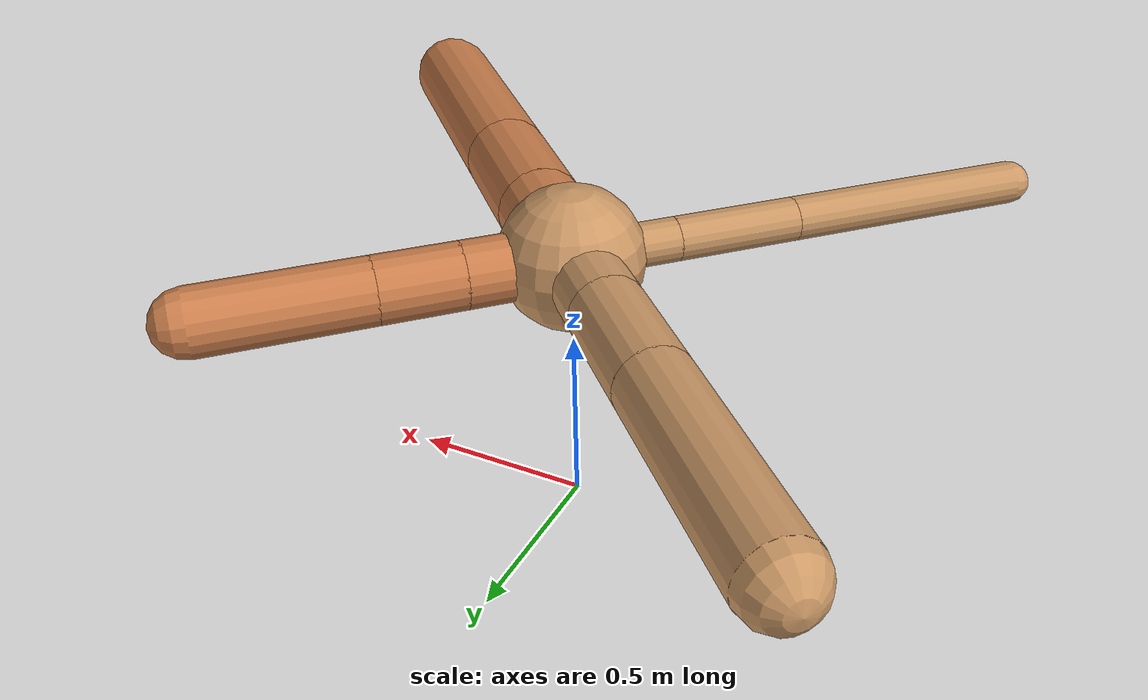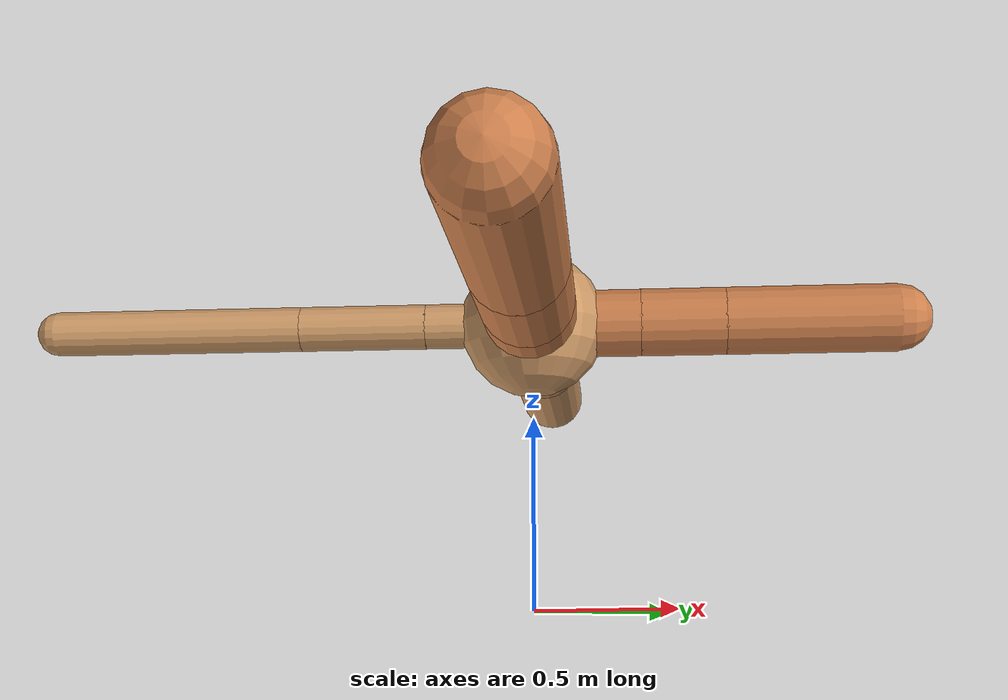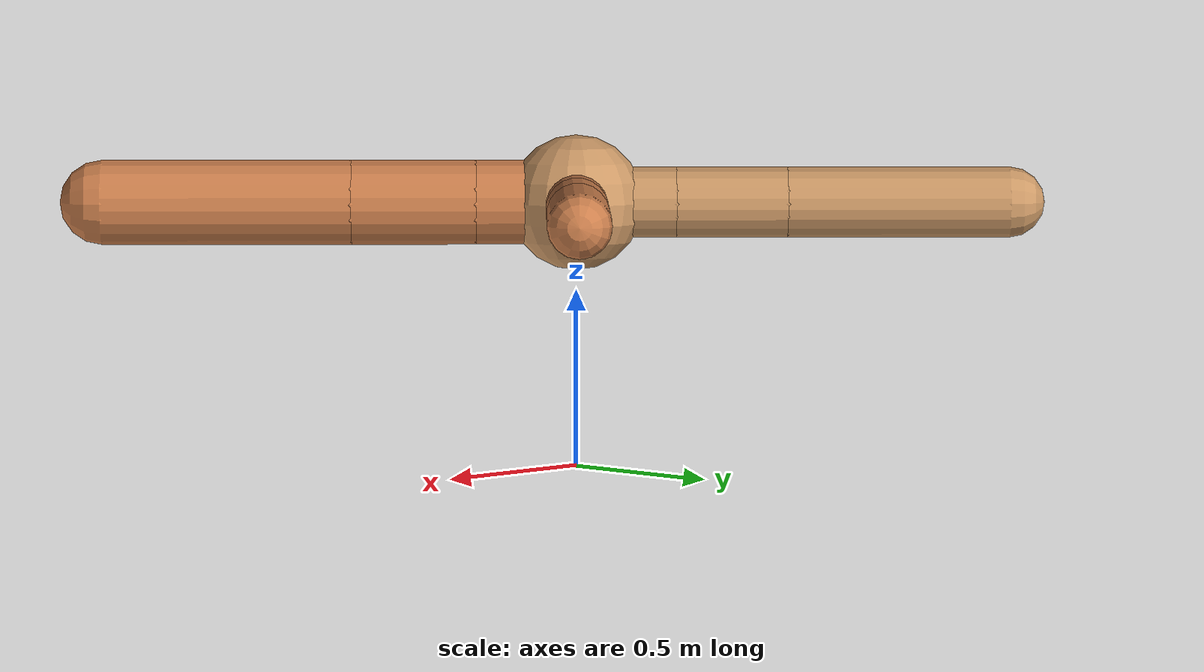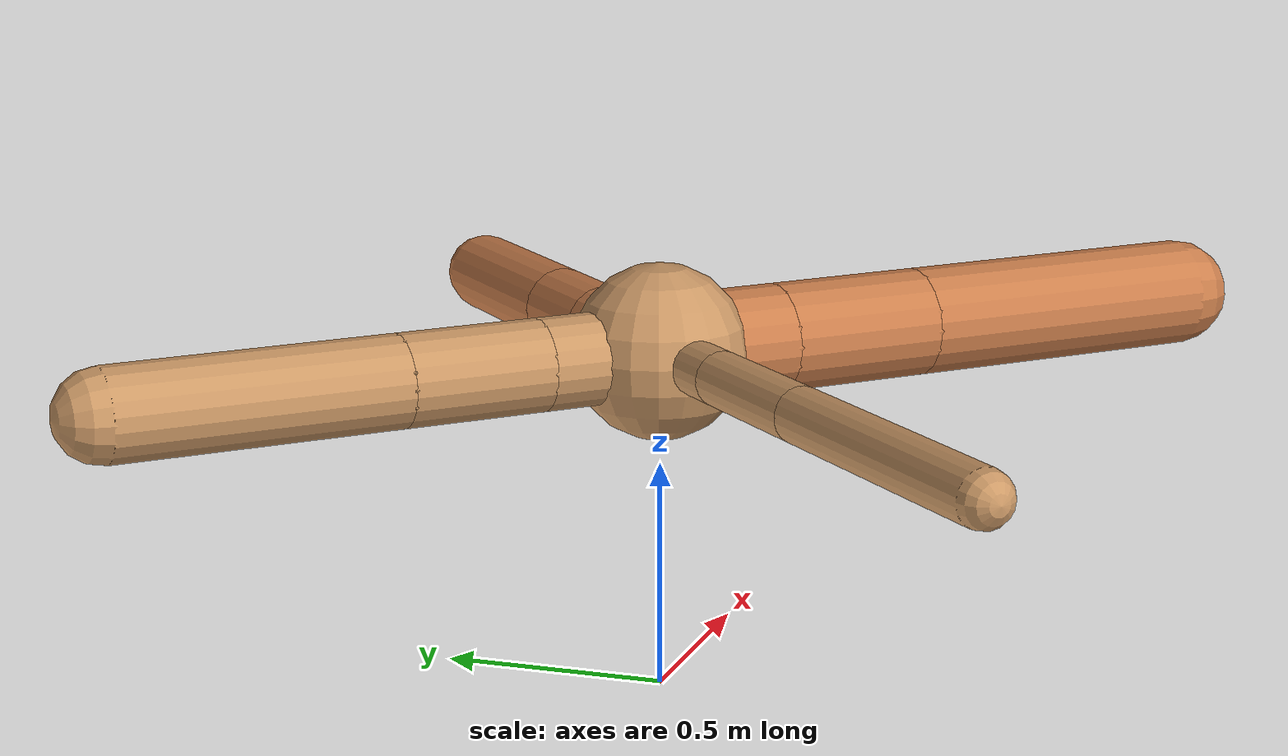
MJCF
<?xml version="1.0" ?>
<mujoco model="ant">

	<compiler angle="degree" coordinate="local" inertiafromgeom="true"/>

	<option integrator="RK4" timestep="0.01"/>

	<custom>

		<numeric data="0.0 0.0 0.55 1.0 0.0 0.0 0.0 0.0 1.0 0.0 -1.0 0.0 -1.0 0.0 1.0" name="init_qpos"/>

	</custom>

	<default>

		<joint armature="1" damping="1" limited="true"/>

		<geom conaffinity="0" condim="3" density="5.0" friction="1.5 0.1 0.1" margin="0.01" rgba="0.8 0.6 0.4 1"/>

	</default>

	<worldbody>

		<body name="torso" pos="0 0 0.75">

			<geom name="torso_geom" pos="0 0 0" size="0.19149075170915197" type="sphere"/>

			<!--joint armature="0" damping="0" limited="false" margin="0.01" name="root" pos="0 0 0" type="free"/-->

			<body name="front_left_leg" pos="0 0 0">

				<geom fromto="0 0 0 0.2 0.2 0" name="aux_1_geom" size="0.08814878591716076" type="capsule" rgba=".8 .5 .3 1"/>

				<body name="aux_1" pos="0.2 0.2 0">

					<joint axis="0 0 1" name="hip_1" pos="0.0 0.0 0.0" range="-40 40" type="hinge"/>

					<geom fromto="0 0 0 0.15519038246435418 0.15519038246435418 0" name="left_leg_geom" size="0.08814878591716076" type="capsule" rgba=".8 .5 .3 1"/>

					<body pos="0.15519038246435418 0.15519038246435418 0" name="front_left_foot">

						<joint axis="-1 1 0" name="ankle_1" pos="0.0 0.0 0.0" range="30 100" type="hinge"/>

						<geom fromto="0 0 0 0.31038076492870836 0.31038076492870836 0" name="left_ankle_geom" size="0.08814878591716076" type="capsule" rgba=".8 .5 .3 1"/>

					</body>

				</body>

			</body>

			<body name="front_right_leg" pos="0 0 0">

				<geom fromto="0 0 0 -0.2 0.2 0" name="aux_2_geom" size="0.10003655791382172" type="capsule"/>

				<body name="aux_2" pos="-0.2 0.2 0">

					<joint axis="0 0 1" name="hip_2" pos="0.0 0.0 0.0" range="-40 40" type="hinge"/>

					<geom fromto="0 0 0 -0.22264234195015914 0.22264234195015914 0" name="right_leg_geom" size="0.10003655791382172" type="capsule"/>

					<body pos="-0.22264234195015914 0.22264234195015914 0" name="front_right_foot">

						<joint axis="1 1 0" name="ankle_2" pos="0.0 0.0 0.0" range="-100 -30" type="hinge"/>

						<geom fromto="0 0 0 -0.4452846839003183 0.4452846839003183 0" name="right_ankle_geom" size="0.10003655791382172" type="capsule"/>

					</body>

				</body>

			</body>

			<body name="left_back_leg" pos="0 0 0">

				<geom fromto="0 0 0 -0.2 -0.2 0" name="aux_3_geom" size="0.05927024786840386" type="capsule"/>

				<body name="aux_3" pos="-0.2 -0.2 0">

					<joint axis="0 0 1" name="hip_3" pos="0.0 0.0 0.0" range="-40 40" type="hinge"/>

					<geom fromto="0 0 0 -0.2375206662395579 -0.2375206662395579 0" name="back_leg_geom" size="0.05927024786840386" type="capsule"/>

					<body pos="-0.2375206662395579 -0.2375206662395579 0" name="left_back_foot">

						<joint axis="-1 1 0" name="ankle_3" pos="0.0 0.0 0.0" range="-100 -30" type="hinge"/>

						<geom fromto="0 0 0 -0.4750413324791158 -0.4750413324791158 0" name="third_ankle_geom" size="0.05927024786840386" type="capsule"/>

					</body>

				</body>

			</body>

			<body name="right_back_leg" pos="0 0 0">

				<geom fromto="0 0 0 0.2 -0.2 0" name="aux_4_geom" size="0.11975778318831466" type="capsule" rgba=".8 .5 .3 1"/>

				<body name="aux_4" pos="0.2 -0.2 0">

					<joint axis="0 0 1" name="hip_4" pos="0.0 0.0 0.0" range="-40 40" type="hinge"/>

					<geom fromto="0 0 0 0.2498065177620435 -0.2498065177620435 0" name="rightback_leg_geom" size="0.11975778318831466" type="capsule" rgba=".8 .5 .3 1"/>

					<body pos="0.2498065177620435 -0.2498065177620435 0" name="right_back_foot">

						<joint axis="1 1 0" name="ankle_4" pos="0.0 0.0 0.0" range="30 100" type="hinge"/>

						<geom fromto="0 0 0 0.499613035524087 -0.499613035524087 0" name="fourth_ankle_geom" size="0.11975778318831466" type="capsule" rgba=".8 .5 .3 1"/>

					</body>

				</body>

			</body>

		</body>

	</worldbody>

	<actuator>

		<motor ctrllimited="true" ctrlrange="-1.0 1.0" joint="hip_4" gear="150"/>

		<motor ctrllimited="true" ctrlrange="-1.0 1.0" joint="ankle_4" gear="150"/>

		<motor ctrllimited="true" ctrlrange="-1.0 1.0" joint="hip_1" gear="150"/>

		<motor ctrllimited="true" ctrlrange="-1.0 1.0" joint="ankle_1" gear="150"/>

		<motor ctrllimited="true" ctrlrange="-1.0 1.0" joint="hip_2" gear="150"/>

		<motor ctrllimited="true" ctrlrange="-1.0 1.0" joint="ankle_2" gear="150"/>

		<motor ctrllimited="true" ctrlrange="-1.0 1.0" joint="hip_3" gear="150"/>

		<motor ctrllimited="true" ctrlrange="-1.0 1.0" joint="ankle_3" gear="150"/>

	</actuator>

</mujoco>
